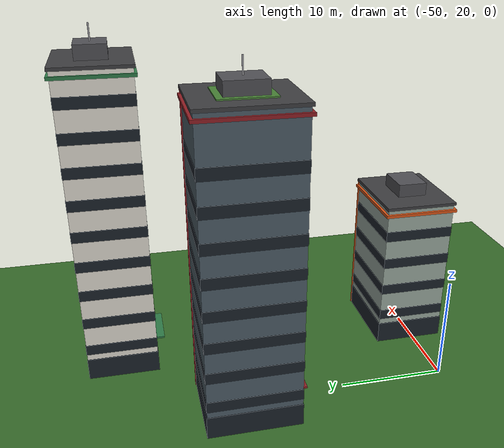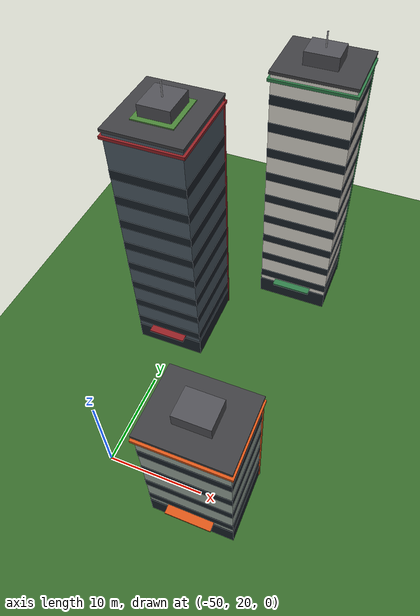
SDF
<sdf version="1.9">
 <world name="city">
  <model name="ground">
   <static>true</static>
   <link name="link">
    <collision name="collision">
     <pose>0 0 -0.1 0 0 0</pose>
     <geometry><box><size>220 220 0.2</size></box></geometry>
     <surface><friction><ode><mu>1.0</mu><mu2>1.0</mu2></ode></friction></surface>
    </collision>
    <visual name="visual">
     <pose>0 0 -0.1 0 0 0</pose>
     <geometry><box><size>220 220 0.2</size></box></geometry>
     <material>
      <ambient>0.17 0.33 0.13 1</ambient>
      <diffuse>0.21 0.41 0.16 1</diffuse>
      <specular>0.05 0.06 0.04 1</specular>
     </material>
    </visual>
   </link>
  </model>
  <model name="building_3">
   <static>true</static>
   <pose>-39.5 20.5 0 0 0 0</pose>
   <link name="link">
    <collision name="collision">
     <pose>0 0 7.568 0 0 0</pose>
     <geometry><box><size>8.362 6.865 15.136</size></box></geometry>
    </collision>
    <visual name="body">
     <pose>0 0 7.568 0 0 0</pose>
     <geometry><box><size>8.362 6.865 15.136</size></box></geometry>
     <material>
      <ambient>0.6 0.66 0.62 1</ambient>
      <diffuse>0.6 0.66 0.62 1</diffuse>
      <specular>0.16 0.16 0.18 1</specular>
      <pbr><metal><roughness>0.62</roughness><metalness>0.08</metalness></metal></pbr>
     </material>
    </visual>
    <visual name="podium">
     <pose>0 0 1.1 0 0 0</pose>
     <geometry><box><size>8.462 6.965 2.2</size></box></geometry>
     <material>
      <ambient>0.07 0.09 0.11 1</ambient>
      <diffuse>0.1 0.13 0.16 1</diffuse>
      <specular>0.45 0.47 0.5 1</specular>
      <pbr><metal><roughness>0.22</roughness><metalness>0.4</metalness></metal></pbr>
     </material>
    </visual>
    <visual name="canopy">
     <pose>0 -3.832 2.55 0 0 0</pose>
     <geometry><box><size>4.599 0.90 0.18</size></box></geometry>
     <material>
      <ambient>0.85 0.33 0.09 1</ambient>
      <diffuse>0.85 0.33 0.09 1</diffuse>
      <specular>0.25 0.25 0.25 1</specular>
      <pbr><metal><roughness>0.45</roughness><metalness>0</metalness></metal></pbr>
     </material>
    </visual>
    <visual name="corner_column">
     <pose>4.221 3.472 7.568 0 0 0</pose>
     <geometry><box><size>0.16 0.16 15.136</size></box></geometry>
     <material>
      <ambient>0.85 0.33 0.09 1</ambient>
      <diffuse>0.85 0.33 0.09 1</diffuse>
      <specular>0.25 0.25 0.25 1</specular>
      <pbr><metal><roughness>0.45</roughness><metalness>0</metalness></metal></pbr>
     </material>
    </visual>
    <visual name="glass_0">
     <pose>0 0 3.3 0 0 0</pose>
     <geometry><box><size>8.422 6.925 1.05</size></box></geometry>
     <material>
      <ambient>0.075 0.095 0.115 1</ambient>
      <diffuse>0.1 0.13 0.16 1</diffuse>
      <specular>0.55 0.6 0.65 1</specular>
      <emissive>0.06 0.09 0.12 1</emissive>
      <pbr><metal><roughness>0.1</roughness><metalness>0.55</metalness></metal></pbr>
     </material>
    </visual>
    <visual name="glass_1">
     <pose>0 0 6.3 0 0 0</pose>
     <geometry><box><size>8.422 6.925 1.05</size></box></geometry>
     <material>
      <ambient>0.075 0.095 0.115 1</ambient>
      <diffuse>0.1 0.13 0.16 1</diffuse>
      <specular>0.55 0.6 0.65 1</specular>
      <emissive>0.06 0.09 0.12 1</emissive>
      <pbr><metal><roughness>0.1</roughness><metalness>0.55</metalness></metal></pbr>
     </material>
    </visual>
    <visual name="glass_2">
     <pose>0 0 9.3 0 0 0</pose>
     <geometry><box><size>8.422 6.925 1.05</size></box></geometry>
     <material>
      <ambient>0.075 0.095 0.115 1</ambient>
      <diffuse>0.1 0.13 0.16 1</diffuse>
      <specular>0.55 0.6 0.65 1</specular>
      <emissive>0.06 0.09 0.12 1</emissive>
      <pbr><metal><roughness>0.1</roughness><metalness>0.55</metalness></metal></pbr>
     </material>
    </visual>
    <visual name="glass_3">
     <pose>0 0 12.3 0 0 0</pose>
     <geometry><box><size>8.422 6.925 1.05</size></box></geometry>
     <material>
      <ambient>0.075 0.095 0.115 1</ambient>
      <diffuse>0.1 0.13 0.16 1</diffuse>
      <specular>0.55 0.6 0.65 1</specular>
      <emissive>0.06 0.09 0.12 1</emissive>
      <pbr><metal><roughness>0.1</roughness><metalness>0.55</metalness></metal></pbr>
     </material>
    </visual>
    <visual name="cornice">
     <pose>0 0 14.586 0 0 0</pose>
     <geometry><box><size>8.862 7.365 0.30</size></box></geometry>
     <material>
      <ambient>0.85 0.33 0.09 1</ambient>
      <diffuse>0.85 0.33 0.09 1</diffuse>
      <specular>0.2 0.2 0.2 1</specular>
      <pbr><metal><roughness>0.55</roughness><metalness>0</metalness></metal></pbr>
     </material>
    </visual>
    <visual name="roof">
     <pose>0 0 15.286 0 0 0</pose>
     <geometry><box><size>8.662 7.165 0.30</size></box></geometry>
     <material>
      <ambient>0.24 0.24 0.25 1</ambient>
      <diffuse>0.24 0.24 0.25 1</diffuse>
      <specular>0.18 0.18 0.18 1</specular>
      <pbr><metal><roughness>0.85</roughness><metalness>0</metalness></metal></pbr>
     </material>
    </visual>
    <visual name="roof_unit">
     <pose>0 0 16.086 0 0 0</pose>
     <geometry><box><size>3.512 2.883 1.30</size></box></geometry>
     <material>
      <ambient>0.31 0.31 0.33 1</ambient>
      <diffuse>0.31 0.31 0.33 1</diffuse>
      <specular>0.18 0.18 0.18 1</specular>
      <pbr><metal><roughness>0.55</roughness><metalness>0.3</metalness></metal></pbr>
     </material>
    </visual>
   </link>
  </model>
  <model name="building_4">
   <static>true</static>
   <pose>-50.5 39.5 0 0 0 0</pose>
   <link name="link">
    <collision name="collision">
     <pose>0 0 14.402 0 0 0</pose>
     <geometry><box><size>7.551 8.546 28.804</size></box></geometry>
    </collision>
    <visual name="body">
     <pose>0 0 14.402 0 0 0</pose>
     <geometry><box><size>7.551 8.546 28.804</size></box></geometry>
     <material>
      <ambient>0.3 0.36 0.4 1</ambient>
      <diffuse>0.3 0.36 0.4 1</diffuse>
      <specular>0.16 0.16 0.18 1</specular>
      <pbr><metal><roughness>0.62</roughness><metalness>0.08</metalness></metal></pbr>
     </material>
    </visual>
    <visual name="podium">
     <pose>0 0 1.1 0 0 0</pose>
     <geometry><box><size>7.651 8.646 2.2</size></box></geometry>
     <material>
      <ambient>0.07 0.09 0.11 1</ambient>
      <diffuse>0.1 0.13 0.16 1</diffuse>
      <specular>0.45 0.47 0.5 1</specular>
      <pbr><metal><roughness>0.22</roughness><metalness>0.4</metalness></metal></pbr>
     </material>
    </visual>
    <visual name="canopy">
     <pose>0 -4.673 2.55 0 0 0</pose>
     <geometry><box><size>4.153 0.90 0.18</size></box></geometry>
     <material>
      <ambient>0.56 0.12 0.14 1</ambient>
      <diffuse>0.56 0.12 0.14 1</diffuse>
      <specular>0.25 0.25 0.25 1</specular>
      <pbr><metal><roughness>0.45</roughness><metalness>0</metalness></metal></pbr>
     </material>
    </visual>
    <visual name="corner_column">
     <pose>3.816 4.313 14.402 0 0 0</pose>
     <geometry><box><size>0.16 0.16 28.804</size></box></geometry>
     <material>
      <ambient>0.56 0.12 0.14 1</ambient>
      <diffuse>0.56 0.12 0.14 1</diffuse>
      <specular>0.25 0.25 0.25 1</specular>
      <pbr><metal><roughness>0.45</roughness><metalness>0</metalness></metal></pbr>
     </material>
    </visual>
    <visual name="glass_0">
     <pose>0 0 3.3 0 0 0</pose>
     <geometry><box><size>7.611 8.606 1.05</size></box></geometry>
     <material>
      <ambient>0.075 0.095 0.115 1</ambient>
      <diffuse>0.1 0.13 0.16 1</diffuse>
      <specular>0.55 0.6 0.65 1</specular>
      <emissive>0.06 0.09 0.12 1</emissive>
      <pbr><metal><roughness>0.1</roughness><metalness>0.55</metalness></metal></pbr>
     </material>
    </visual>
    <visual name="glass_1">
     <pose>0 0 6.3 0 0 0</pose>
     <geometry><box><size>7.611 8.606 1.05</size></box></geometry>
     <material>
      <ambient>0.075 0.095 0.115 1</ambient>
      <diffuse>0.1 0.13 0.16 1</diffuse>
      <specular>0.55 0.6 0.65 1</specular>
      <emissive>0.06 0.09 0.12 1</emissive>
      <pbr><metal><roughness>0.1</roughness><metalness>0.55</metalness></metal></pbr>
     </material>
    </visual>
    <visual name="glass_2">
     <pose>0 0 9.3 0 0 0</pose>
     <geometry><box><size>7.611 8.606 1.05</size></box></geometry>
     <material>
      <ambient>0.075 0.095 0.115 1</ambient>
      <diffuse>0.1 0.13 0.16 1</diffuse>
      <specular>0.55 0.6 0.65 1</specular>
      <emissive>0.06 0.09 0.12 1</emissive>
      <pbr><metal><roughness>0.1</roughness><metalness>0.55</metalness></metal></pbr>
     </material>
    </visual>
    <visual name="glass_3">
     <pose>0 0 12.3 0 0 0</pose>
     <geometry><box><size>7.611 8.606 1.05</size></box></geometry>
     <material>
      <ambient>0.075 0.095 0.115 1</ambient>
      <diffuse>0.1 0.13 0.16 1</diffuse>
      <specular>0.55 0.6 0.65 1</specular>
      <emissive>0.06 0.09 0.12 1</emissive>
      <pbr><metal><roughness>0.1</roughness><metalness>0.55</metalness></metal></pbr>
     </material>
    </visual>
    <visual name="glass_4">
     <pose>0 0 15.3 0 0 0</pose>
     <geometry><box><size>7.611 8.606 1.05</size></box></geometry>
     <material>
      <ambient>0.075 0.095 0.115 1</ambient>
      <diffuse>0.1 0.13 0.16 1</diffuse>
      <specular>0.55 0.6 0.65 1</specular>
      <emissive>0.06 0.09 0.12 1</emissive>
      <pbr><metal><roughness>0.1</roughness><metalness>0.55</metalness></metal></pbr>
     </material>
    </visual>
    <visual name="glass_5">
     <pose>0 0 18.3 0 0 0</pose>
     <geometry><box><size>7.611 8.606 1.05</size></box></geometry>
     <material>
      <ambient>0.075 0.095 0.115 1</ambient>
      <diffuse>0.1 0.13 0.16 1</diffuse>
      <specular>0.55 0.6 0.65 1</specular>
      <emissive>0.46 0.3 0.12 1</emissive>
      <pbr><metal><roughness>0.1</roughness><metalness>0.55</metalness></metal></pbr>
     </material>
    </visual>
    <visual name="glass_6">
     <pose>0 0 21.3 0 0 0</pose>
     <geometry><box><size>7.611 8.606 1.05</size></box></geometry>
     <material>
      <ambient>0.075 0.095 0.115 1</ambient>
      <diffuse>0.1 0.13 0.16 1</diffuse>
      <specular>0.55 0.6 0.65 1</specular>
      <emissive>0.06 0.09 0.12 1</emissive>
      <pbr><metal><roughness>0.1</roughness><metalness>0.55</metalness></metal></pbr>
     </material>
    </visual>
    <visual name="glass_7">
     <pose>0 0 24.3 0 0 0</pose>
     <geometry><box><size>7.611 8.606 1.05</size></box></geometry>
     <material>
      <ambient>0.075 0.095 0.115 1</ambient>
      <diffuse>0.1 0.13 0.16 1</diffuse>
      <specular>0.55 0.6 0.65 1</specular>
      <emissive>0.06 0.09 0.12 1</emissive>
      <pbr><metal><roughness>0.1</roughness><metalness>0.55</metalness></metal></pbr>
     </material>
    </visual>
    <visual name="cornice">
     <pose>0 0 28.254 0 0 0</pose>
     <geometry><box><size>8.051 9.046 0.30</size></box></geometry>
     <material>
      <ambient>0.56 0.12 0.14 1</ambient>
      <diffuse>0.56 0.12 0.14 1</diffuse>
      <specular>0.2 0.2 0.2 1</specular>
      <pbr><metal><roughness>0.55</roughness><metalness>0</metalness></metal></pbr>
     </material>
    </visual>
    <visual name="roof">
     <pose>0 0 28.954 0 0 0</pose>
     <geometry><box><size>7.851 8.846 0.30</size></box></geometry>
     <material>
      <ambient>0.24 0.24 0.25 1</ambient>
      <diffuse>0.24 0.24 0.25 1</diffuse>
      <specular>0.18 0.18 0.18 1</specular>
      <pbr><metal><roughness>0.85</roughness><metalness>0</metalness></metal></pbr>
     </material>
    </visual>
    <visual name="roof_garden">
     <pose>0 0 29.144 0 0 0</pose>
     <geometry><box><size>4.153 4.7 0.16</size></box></geometry>
     <material>
      <ambient>0.24 0.44 0.18 1</ambient>
      <diffuse>0.28 0.5 0.21 1</diffuse>
      <specular>0.05 0.06 0.04 1</specular>
     </material>
    </visual>
    <visual name="roof_unit">
     <pose>0 0 29.754 0 0 0</pose>
     <geometry><box><size>3.171 3.589 1.30</size></box></geometry>
     <material>
      <ambient>0.31 0.31 0.33 1</ambient>
      <diffuse>0.31 0.31 0.33 1</diffuse>
      <specular>0.18 0.18 0.18 1</specular>
      <pbr><metal><roughness>0.55</roughness><metalness>0.3</metalness></metal></pbr>
     </material>
    </visual>
    <visual name="antenna">
     <pose>0 0 31.104 0 0 0</pose>
     <geometry><cylinder><radius>0.07</radius><length>1.6</length></cylinder></geometry>
     <material>
      <ambient>0.62 0.62 0.64 1</ambient>
      <diffuse>0.62 0.62 0.64 1</diffuse>
      <specular>0.18 0.18 0.18 1</specular>
      <pbr><metal><roughness>0.35</roughness><metalness>0.55</metalness></metal></pbr>
     </material>
    </visual>
   </link>
  </model>
  <model name="building_5">
   <static>true</static>
   <pose>-39.5 50.5 0 0 0 0</pose>
   <link name="link">
    <collision name="collision">
     <pose>0 0 14.956 0 0 0</pose>
     <geometry><box><size>8.073 6.724 29.912</size></box></geometry>
    </collision>
    <visual name="body">
     <pose>0 0 14.956 0 0 0</pose>
     <geometry><box><size>8.073 6.724 29.912</size></box></geometry>
     <material>
      <ambient>0.88 0.86 0.82 1</ambient>
      <diffuse>0.88 0.86 0.82 1</diffuse>
      <specular>0.16 0.16 0.18 1</specular>
      <pbr><metal><roughness>0.62</roughness><metalness>0.08</metalness></metal></pbr>
     </material>
    </visual>
    <visual name="podium">
     <pose>0 0 1.1 0 0 0</pose>
     <geometry><box><size>8.173 6.824 2.2</size></box></geometry>
     <material>
      <ambient>0.07 0.09 0.11 1</ambient>
      <diffuse>0.1 0.13 0.16 1</diffuse>
      <specular>0.45 0.47 0.5 1</specular>
      <pbr><metal><roughness>0.22</roughness><metalness>0.4</metalness></metal></pbr>
     </material>
    </visual>
    <visual name="canopy">
     <pose>0 -3.762 2.55 0 0 0</pose>
     <geometry><box><size>4.44 0.90 0.18</size></box></geometry>
     <material>
      <ambient>0.18 0.48 0.28 1</ambient>
      <diffuse>0.18 0.48 0.28 1</diffuse>
      <specular>0.25 0.25 0.25 1</specular>
      <pbr><metal><roughness>0.45</roughness><metalness>0</metalness></metal></pbr>
     </material>
    </visual>
    <visual name="corner_column">
     <pose>4.077 3.402 14.956 0 0 0</pose>
     <geometry><box><size>0.16 0.16 29.912</size></box></geometry>
     <material>
      <ambient>0.18 0.48 0.28 1</ambient>
      <diffuse>0.18 0.48 0.28 1</diffuse>
      <specular>0.25 0.25 0.25 1</specular>
      <pbr><metal><roughness>0.45</roughness><metalness>0</metalness></metal></pbr>
     </material>
    </visual>
    <visual name="glass_0">
     <pose>0 0 3.3 0 0 0</pose>
     <geometry><box><size>8.133 6.784 1.05</size></box></geometry>
     <material>
      <ambient>0.075 0.095 0.115 1</ambient>
      <diffuse>0.1 0.13 0.16 1</diffuse>
      <specular>0.55 0.6 0.65 1</specular>
      <emissive>0.06 0.09 0.12 1</emissive>
      <pbr><metal><roughness>0.1</roughness><metalness>0.55</metalness></metal></pbr>
     </material>
    </visual>
    <visual name="glass_1">
     <pose>0 0 6.3 0 0 0</pose>
     <geometry><box><size>8.133 6.784 1.05</size></box></geometry>
     <material>
      <ambient>0.075 0.095 0.115 1</ambient>
      <diffuse>0.1 0.13 0.16 1</diffuse>
      <specular>0.55 0.6 0.65 1</specular>
      <emissive>0.06 0.09 0.12 1</emissive>
      <pbr><metal><roughness>0.1</roughness><metalness>0.55</metalness></metal></pbr>
     </material>
    </visual>
    <visual name="glass_2">
     <pose>0 0 9.3 0 0 0</pose>
     <geometry><box><size>8.133 6.784 1.05</size></box></geometry>
     <material>
      <ambient>0.075 0.095 0.115 1</ambient>
      <diffuse>0.1 0.13 0.16 1</diffuse>
      <specular>0.55 0.6 0.65 1</specular>
      <emissive>0.06 0.09 0.12 1</emissive>
      <pbr><metal><roughness>0.1</roughness><metalness>0.55</metalness></metal></pbr>
     </material>
    </visual>
    <visual name="glass_3">
     <pose>0 0 12.3 0 0 0</pose>
     <geometry><box><size>8.133 6.784 1.05</size></box></geometry>
     <material>
      <ambient>0.075 0.095 0.115 1</ambient>
      <diffuse>0.1 0.13 0.16 1</diffuse>
      <specular>0.55 0.6 0.65 1</specular>
      <emissive>0.06 0.09 0.12 1</emissive>
      <pbr><metal><roughness>0.1</roughness><metalness>0.55</metalness></metal></pbr>
     </material>
    </visual>
    <visual name="glass_4">
     <pose>0 0 15.3 0 0 0</pose>
     <geometry><box><size>8.133 6.784 1.05</size></box></geometry>
     <material>
      <ambient>0.075 0.095 0.115 1</ambient>
      <diffuse>0.1 0.13 0.16 1</diffuse>
      <specular>0.55 0.6 0.65 1</specular>
      <emissive>0.06 0.09 0.12 1</emissive>
      <pbr><metal><roughness>0.1</roughness><metalness>0.55</metalness></metal></pbr>
     </material>
    </visual>
    <visual name="glass_5">
     <pose>0 0 18.3 0 0 0</pose>
     <geometry><box><size>8.133 6.784 1.05</size></box></geometry>
     <material>
      <ambient>0.075 0.095 0.115 1</ambient>
      <diffuse>0.1 0.13 0.16 1</diffuse>
      <specular>0.55 0.6 0.65 1</specular>
      <emissive>0.06 0.09 0.12 1</emissive>
      <pbr><metal><roughness>0.1</roughness><metalness>0.55</metalness></metal></pbr>
     </material>
    </visual>
    <visual name="glass_6">
     <pose>0 0 21.3 0 0 0</pose>
     <geometry><box><size>8.133 6.784 1.05</size></box></geometry>
     <material>
      <ambient>0.075 0.095 0.115 1</ambient>
      <diffuse>0.1 0.13 0.16 1</diffuse>
      <specular>0.55 0.6 0.65 1</specular>
      <emissive>0.06 0.09 0.12 1</emissive>
      <pbr><metal><roughness>0.1</roughness><metalness>0.55</metalness></metal></pbr>
     </material>
    </visual>
    <visual name="glass_7">
     <pose>0 0 24.3 0 0 0</pose>
     <geometry><box><size>8.133 6.784 1.05</size></box></geometry>
     <material>
      <ambient>0.075 0.095 0.115 1</ambient>
      <diffuse>0.1 0.13 0.16 1</diffuse>
      <specular>0.55 0.6 0.65 1</specular>
      <emissive>0.06 0.09 0.12 1</emissive>
      <pbr><metal><roughness>0.1</roughness><metalness>0.55</metalness></metal></pbr>
     </material>
    </visual>
    <visual name="glass_8">
     <pose>0 0 27.3 0 0 0</pose>
     <geometry><box><size>8.133 6.784 1.05</size></box></geometry>
     <material>
      <ambient>0.075 0.095 0.115 1</ambient>
      <diffuse>0.1 0.13 0.16 1</diffuse>
      <specular>0.55 0.6 0.65 1</specular>
      <emissive>0.06 0.09 0.12 1</emissive>
      <pbr><metal><roughness>0.1</roughness><metalness>0.55</metalness></metal></pbr>
     </material>
    </visual>
    <visual name="cornice">
     <pose>0 0 29.362 0 0 0</pose>
     <geometry><box><size>8.573 7.224 0.30</size></box></geometry>
     <material>
      <ambient>0.18 0.48 0.28 1</ambient>
      <diffuse>0.18 0.48 0.28 1</diffuse>
      <specular>0.2 0.2 0.2 1</specular>
      <pbr><metal><roughness>0.55</roughness><metalness>0</metalness></metal></pbr>
     </material>
    </visual>
    <visual name="roof">
     <pose>0 0 30.062 0 0 0</pose>
     <geometry><box><size>8.373 7.024 0.30</size></box></geometry>
     <material>
      <ambient>0.24 0.24 0.25 1</ambient>
      <diffuse>0.24 0.24 0.25 1</diffuse>
      <specular>0.18 0.18 0.18 1</specular>
      <pbr><metal><roughness>0.85</roughness><metalness>0</metalness></metal></pbr>
     </material>
    </visual>
    <visual name="roof_unit">
     <pose>0 0 30.862 0 0 0</pose>
     <geometry><box><size>3.391 2.824 1.30</size></box></geometry>
     <material>
      <ambient>0.31 0.31 0.33 1</ambient>
      <diffuse>0.31 0.31 0.33 1</diffuse>
      <specular>0.18 0.18 0.18 1</specular>
      <pbr><metal><roughness>0.55</roughness><metalness>0.3</metalness></metal></pbr>
     </material>
    </visual>
    <visual name="antenna">
     <pose>0 0 32.212 0 0 0</pose>
     <geometry><cylinder><radius>0.07</radius><length>1.6</length></cylinder></geometry>
     <material>
      <ambient>0.62 0.62 0.64 1</ambient>
      <diffuse>0.62 0.62 0.64 1</diffuse>
      <specular>0.18 0.18 0.18 1</specular>
      <pbr><metal><roughness>0.35</roughness><metalness>0.55</metalness></metal></pbr>
     </material>
    </visual>
   </link>
  </model>
 </world>
</sdf>
